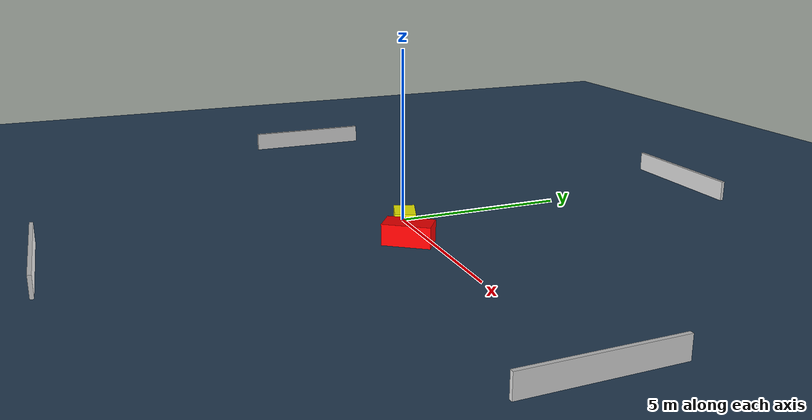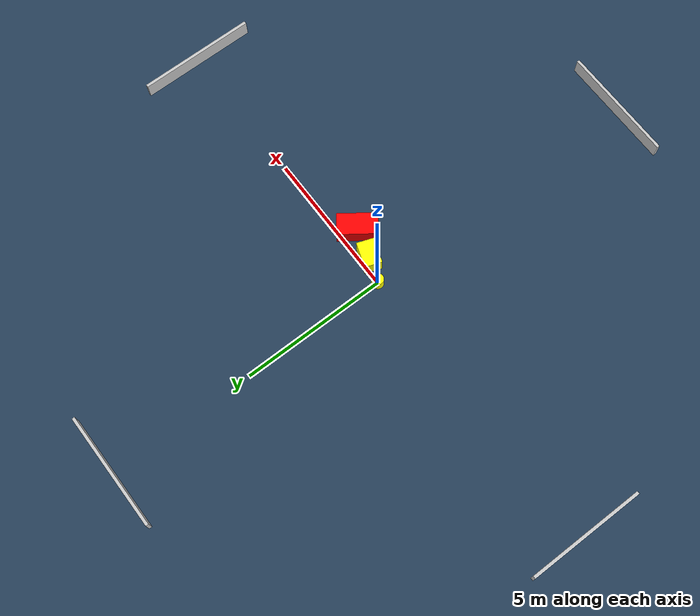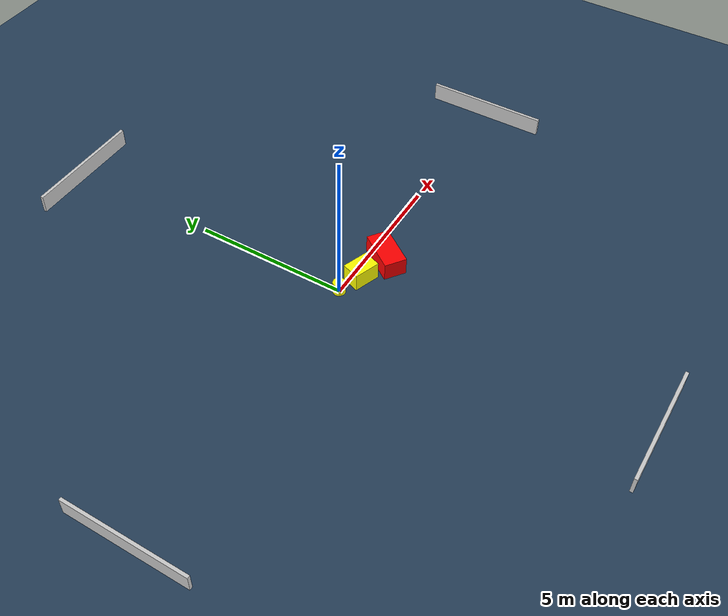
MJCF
<?xml version="1.0" ?>
<mujoco model="generated_environment">
  <option timestep="0.01" integrator="RK4" cone="elliptic"/>
  <default>
    <geom density="1"/>
  </default>
  <asset>
    <texture builtin="gradient" height="3072" name="skybox" rgb1="0.3 0.5 0.7" rgb2="0 0 0" type="skybox" width="512"/>
    <texture builtin="checker" height="300" name="groundplane" rgb1="0.2 0.3 0.4" rgb2="0.1 0.2 0.3" type="2d" width="300"/>
    <material name="groundplane" reflectance="0.2" texrepeat="5 5" texture="groundplane"/>
  </asset>
  <worldbody>
    <light dir="0 0 -1" directional="true" pos="0 0 1.5"/>
    <geom condim="3" friction="0.5 0.005 0.001" material="groundplane" name="floor" pos="0 0 0" size="0 0 0.05" type="plane"/>
    <body name="walls">
      <geom name="wall_1" condim="4" pos="-10.0 0.0 0.3" rgba="0.800000011920929 0.800000011920929 0.800000011920929 1.0" size="0.05 2.0 0.3" type="box"/>
      <geom name="wall_2" condim="4" pos="10.0 0.0 0.3" rgba="0.800000011920929 0.800000011920929 0.800000011920929 1.0" size="0.05 2.0 0.3" type="box"/>
      <geom name="wall_3" condim="4" pos="0.0 -10.0 0.3" rgba="0.800000011920929 0.800000011920929 0.800000011920929 1.0" size="2.0 0.05 0.3" type="box"/>
      <geom name="wall_4" condim="4" pos="0.0 10.0 0.3" rgba="0.800000011920929 0.800000011920929 0.800000011920929 1.0" size="2.0 0.05 0.3" type="box"/>
    </body>
    <body name="robot">
      <joint name="joint_x" type="slide" pos="0 0 0" axis="1 0 0"/>
      <joint name="joint_y" type="slide" pos="0 0 0" axis="0 1 0"/>
      <geom name="robot" type="cylinder" pos="0.0 0.0 0.2" size="0.2 0.2 0.0" mass="5.0" friction="1.0 0.005 0.0001" condim="4" rgba="1.0 1.0 0.0 1.0"/>
    </body>
    <body name="obstacle_1_movable">
      <geom name="obstacle_1_movable" condim="4" pos="0.8093802312735741 -0.2826877757934886 0.3" euler="0 0 160.54342518718198" friction="0.0 0.005 0.001" rgba="1.0 1.0 0.0 1.0" size="0.4313983902477832 0.2971758784387315 0.3" type="box" mass="0.1"/>
      <joint type="free"/>
    </body>
    <body name="obstacle_2_static">
      <geom name="obstacle_2_static" condim="4" pos="1.8251314890465393 -0.5835390697846328 0.3" euler="0 0 54.23689837424519" friction="0.0 0.005 0.001" rgba="1.0 0.0 0.0 1.0" size="0.676936218867751 0.36236222276003116 0.3" type="box"/>
    </body>
  </worldbody>
  <actuator>
    <motor name="actuator_x" joint="joint_x" gear="1" ctrlrange="-1 1"/>
    <motor name="actuator_y" joint="joint_y" gear="1" ctrlrange="-1 1"/>
  </actuator>
</mujoco>
